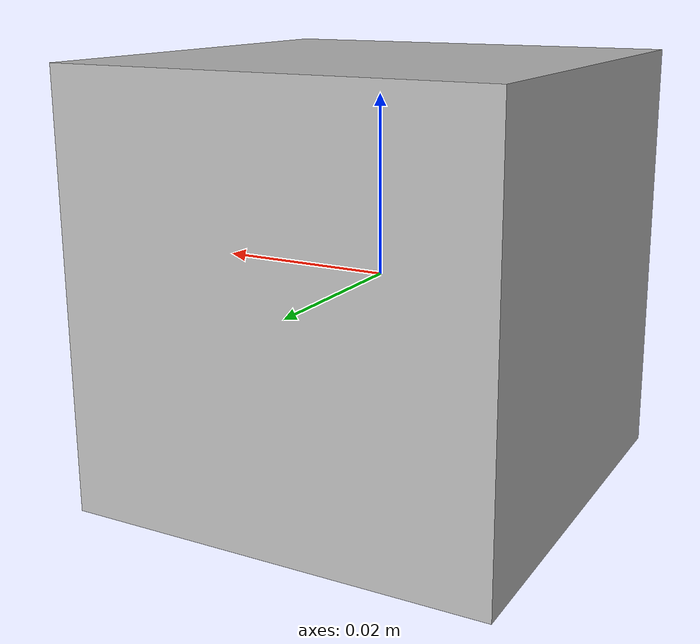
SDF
<?xml version="1.0"?>
<sdf version="1.7">
  <!-- A 0.8x linear copy of numbered_cube.sdf.  The mass (s^3) and the
       diagonal inertia (s^5) preserve the parent cube's material density. -->
  <model name="numbered_cube">
    <link name="numbered_cube">
      <inertial>
        <pose>0 0 0 0 0 0</pose>
        <mass>0.0256</mass>
        <inertia>
          <ixx>0.0000098304</ixx>
          <iyy>0.0000098304</iyy>
          <izz>0.0000098304</izz>
          <ixy>0.0</ixy>
          <ixz>0.0</ixz>
          <iyz>0.0</iyz>
        </inertia>
      </inertial>

      <!-- The original colored and numbered mesh faces, uniformly scaled. -->
      <visual name="face_1_red">
        <pose>0 0 0 0 0 0</pose>
        <geometry><mesh><uri>meshes/face_1_red.obj</uri><scale>0.8 0.8 0.8</scale></mesh></geometry>
      </visual>
      <visual name="face_2_blue">
        <pose>0 0 0 0 0 0</pose>
        <geometry><mesh><uri>meshes/face_2_blue.obj</uri><scale>0.8 0.8 0.8</scale></mesh></geometry>
      </visual>
      <visual name="face_3_green">
        <pose>0 0 0 0 0 0</pose>
        <geometry><mesh><uri>meshes/face_3_green.obj</uri><scale>0.8 0.8 0.8</scale></mesh></geometry>
      </visual>
      <visual name="face_4_yellow">
        <pose>0 0 0 0 0 0</pose>
        <geometry><mesh><uri>meshes/face_4_yellow.obj</uri><scale>0.8 0.8 0.8</scale></mesh></geometry>
      </visual>
      <visual name="face_5_orange">
        <pose>0 0 0 0 0 0</pose>
        <geometry><mesh><uri>meshes/face_5_orange.obj</uri><scale>0.8 0.8 0.8</scale></mesh></geometry>
      </visual>
      <visual name="face_6_purple">
        <pose>0 0 0 0 0 0</pose>
        <geometry><mesh><uri>meshes/face_6_purple.obj</uri><scale>0.8 0.8 0.8</scale></mesh></geometry>
      </visual>

      <collision name="cube_collision">
        <pose>0 0 0 0 0 0</pose>
        <geometry><box><size>0.048 0.048 0.048</size></box></geometry>
        <drake:proximity_properties>
          <drake:mu_static>0.8</drake:mu_static>
          <drake:mu_dynamic>0.5</drake:mu_dynamic>
        </drake:proximity_properties>
      </collision>
    </link>
  </model>
</sdf>
